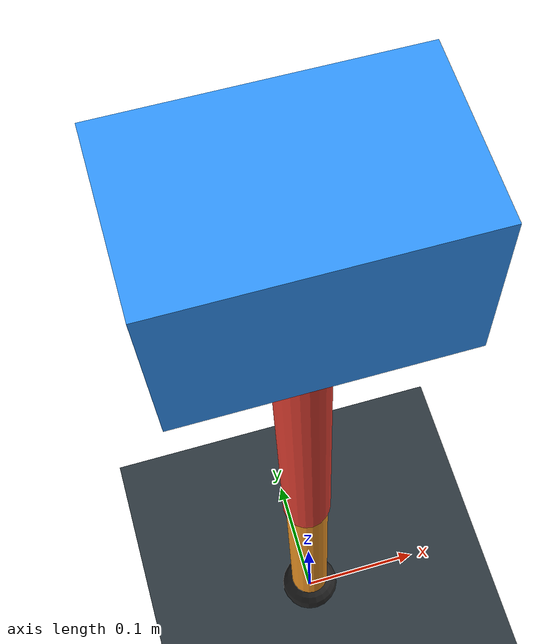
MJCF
<mujoco model="single_axis_two_bar">
  <compiler angle="radian" inertiafromgeom="true"/>
  <option timestep="0.001" integrator="implicitfast" gravity="0 0 -9.81"/>
  <default>
    <joint damping="0.08"/>
    <geom friction="1.2 0.01 0.0001" condim="3"/>
  </default>
  <worldbody>
    <geom name="floor" type="plane" size="5 5 0.1" rgba="0.18 0.22 0.25 1"/>
    <body name="carriage" pos="0 0 0.5617385374883612">
      <joint name="pole_slide" type="slide" axis="0 0 1"/>
      <geom name="payload" type="box" size="0.08 0.05 0.05" mass="2.603976070994323" rgba="0.2 0.6 1 1"/>
      <body name="thigh" pos="0 0 0">
        <joint name="hip" type="hinge" axis="0 1 0"/>
        <geom name="thigh_link" type="capsule" fromto="0 0 0 0 0 -0.3427844389009138" size="0.018" mass="0.24423844221363109" rgba="0.9 0.25 0.2 1"/>
        <body name="shank" pos="0 0 -0.3427844389009138">
          <joint name="knee" type="hinge" axis="0 1 0"/>
          <geom name="shank_link" type="capsule" fromto="0 0 0 0 0 -0.2105542595406958" size="0.016" mass="0.15002269215181405" rgba="0.95 0.6 0.15 1"/>
          <geom name="foot" type="sphere" pos="0 0 -0.2105542595406958" size="0.025" mass="0.03" rgba="0.15 0.15 0.15 1"/>
          <site name="toe" pos="0 0 -0.2105542595406958" size="0.008"/>
        </body>
      </body>
    </body>
  </worldbody>
  <actuator>
    <motor name="hip_motor" joint="hip" ctrlrange="-30.643038852583064 30.643038852583064"/>
    <motor name="knee_motor" joint="knee" ctrlrange="-104.11126774651751 104.11126774651751"/>
  </actuator>
</mujoco>
